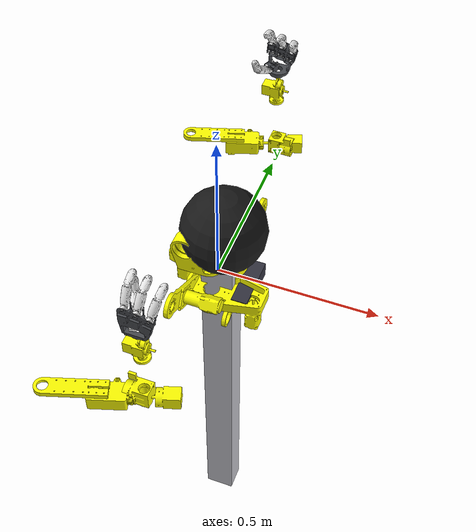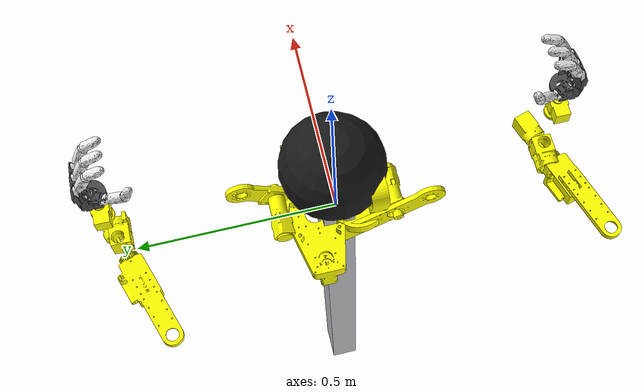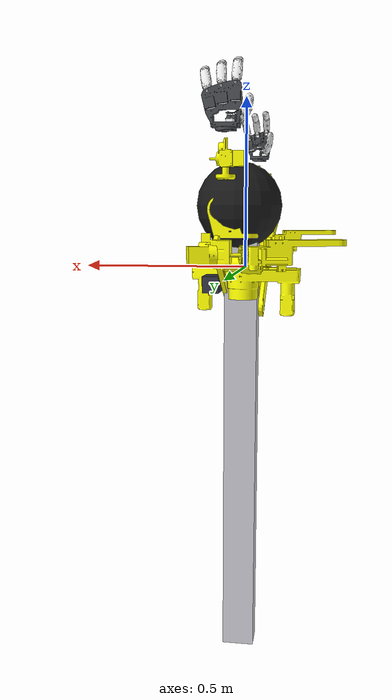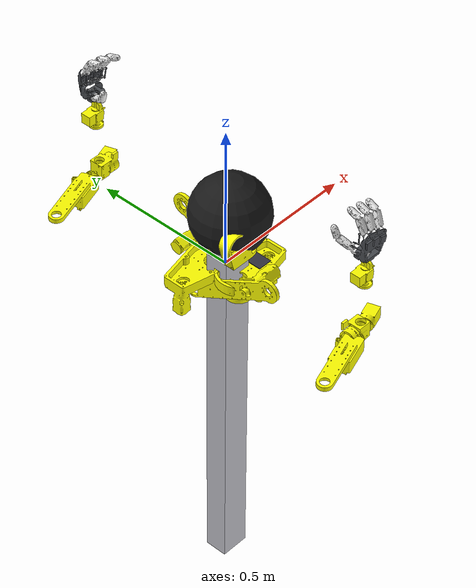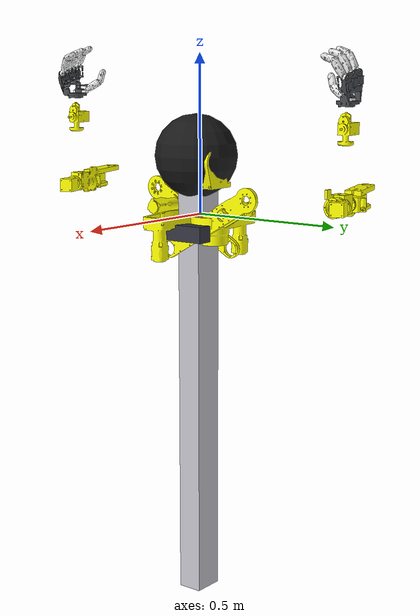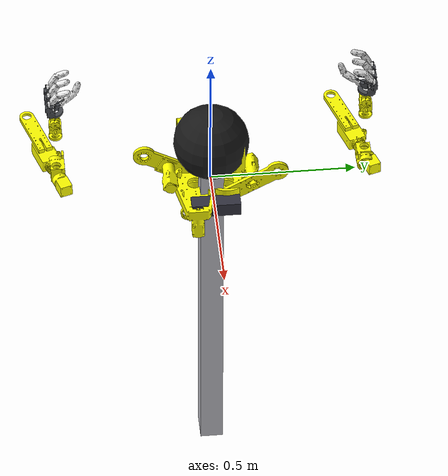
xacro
<?xml version="1.0"?>
<robot xmlns:xacro="http://wiki.ros.org/xacro" name="humanoi_arms">
  <xacro:arg name="left_port" default="/dev/serial/by-path/platform-xhci-hcd.0-usb-0:1:1.0"/>
  <xacro:arg name="right_port" default="/dev/serial/by-path/platform-xhci-hcd.1-usb-0:2:1.0"/>
  <xacro:arg name="left_hw" default="real"/>
  <xacro:arg name="right_hw" default="real"/>

  <xacro:include filename="$(find ar_dual)/urdf/humanoi_upper.xacro"/>
  <xacro:include filename="$(find ar_dual)/urdf/arm_control.xacro"/>

  <xacro:humanoi_upper/>
  <xacro:arm_control prefix="left_" hw="$(arg left_hw)" port="$(arg left_port)"/>
  <xacro:arm_control prefix="right_" hw="$(arg right_hw)" port="$(arg right_port)"/>
</robot>

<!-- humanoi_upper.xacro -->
<robot xmlns:xacro="http://wiki.ros.org/xacro">
  <xacro:include filename="$(find ar_dual)/urdf/ar_arm.xacro"/>
  <xacro:include filename="$(find ar_dual)/urdf/amazinghand.xacro"/>

  <!-- ===== Measured on the real robot 19 Oct 2026 (heights from the floor) ===== -->
  <xacro:property name="up_shoulder_z" value="1.455"/>   <!-- H: floor -> center of arm base (J1 axis) -->
  <xacro:property name="up_plate_top" value="0.205"/>    <!-- C + B: floor -> top of base plate (19.5 + 1 cm) -->
  <xacro:property name="up_head_top" value="1.77"/>      <!-- I: floor -> top of head -->
  <xacro:property name="up_half_gap" value="0.055"/>     <!-- left and right arm bases are 11 cm apart -->
  <!-- ===== Not measured yet (estimated from photos) ===== -->
  <xacro:property name="up_pole_x" value="0.10"/>        <!-- pole cross-section, front-back -->
  <xacro:property name="up_pole_y" value="0.08"/>        <!-- pole cross-section, left-right -->
  <xacro:property name="up_pole_dx" value="0.01"/>       <!-- pole center is in front of the shoulder axis -->
  <xacro:property name="up_head_r" value="0.13"/>        <!-- helmet, approximated as a sphere -->

  <!-- ===== Computed from the values above (relative to the torso frame) ===== -->
  <xacro:property name="up_pole_bottom" value="${up_plate_top - up_shoulder_z}"/>
  <xacro:property name="up_head_cz" value="${up_head_top - up_shoulder_z - up_head_r}"/>
  <xacro:property name="up_pole_len" value="${up_head_cz - up_pole_bottom}"/>
  <xacro:property name="up_pole_cz" value="${(up_head_cz + up_pole_bottom) / 2}"/>
  <xacro:property name="up_left_rpy" value="${-pi/2} 0 0"/>
  <xacro:property name="up_right_rpy" value="${-pi/2} 0 ${pi}"/>

  <!-- left_hand / right_hand: whether that arm has an AmazingHand -->
  <xacro:macro name="humanoi_upper" params="left_hand:=true right_hand:=true">
    <link name="torso">
      <!-- aluminium profile pole, from the top of the base plate up to the head -->
      <visual>
        <origin xyz="${up_pole_dx} 0 ${up_pole_cz}" rpy="0 0 0"/>
        <geometry><box size="${up_pole_x} ${up_pole_y} ${up_pole_len}"/></geometry>
        <material name="pole"><color rgba="0.75 0.75 0.78 1"/></material>
      </visual>
      <collision>
        <origin xyz="${up_pole_dx} 0 ${up_pole_cz}" rpy="0 0 0"/>
        <geometry><box size="${up_pole_x} ${up_pole_y} ${up_pole_len}"/></geometry>
      </collision>
      <!-- head (helmet) -->
      <visual>
        <origin xyz="0.02 0 ${up_head_cz}" rpy="0 0 0"/>
        <geometry><sphere radius="${up_head_r}"/></geometry>
        <material name="head"><color rgba="0.1 0.1 0.1 1"/></material>
      </visual>
      <collision>
        <origin xyz="0.02 0 ${up_head_cz}" rpy="0 0 0"/>
        <geometry><sphere radius="${up_head_r}"/></geometry>
      </collision>
      <!-- Astra Pro camera on the front of the pole below the shoulders (position from hand-eye) -->
      <visual>
        <origin xyz="0.095 0.009 -0.048" rpy="0 0 0"/>
        <geometry><box size="0.05 0.17 0.05"/></geometry>
        <material name="camera"><color rgba="0.2 0.2 0.25 1"/></material>
      </visual>
      <collision>
        <origin xyz="0.095 0.009 -0.048" rpy="0 0 0"/>
        <geometry><box size="0.05 0.17 0.05"/></geometry>
      </collision>
      <inertial>
        <origin xyz="${up_pole_dx} 0 ${up_pole_cz}" rpy="0 0 0"/>
        <mass value="3.0"/>
        <inertia ixx="0.5" ixy="0" ixz="0" iyy="0.5" iyz="0" izz="0.01"/>
      </inertial>
    </link>

    <xacro:ar_arm prefix="left_" parent="torso" off1="0" off2="0" off3="0" off4="0" off5="0" off6="0">
      <origin xyz="0 ${up_half_gap} 0" rpy="${up_left_rpy}"/>
    </xacro:ar_arm>
    <xacro:ar_arm prefix="right_" parent="torso" dir5="-1" flip4="1">
      <origin xyz="0 ${-up_half_gap} 0" rpy="${up_right_rpy}"/>
    </xacro:ar_arm>

    <xacro:if value="${left_hand}">
      <xacro:amazinghand prefix="left_" parent="left_link_6" side="left" mount_offset="0.025" mount_yaw="${pi/2}"/>
    </xacro:if>
    <xacro:if value="${right_hand}">
      <xacro:amazinghand prefix="right_" parent="right_link_6" side="right" mount_offset="0.025"
                         mount_yaw="${-pi/2}"/>
    </xacro:if>
  </xacro:macro>
</robot>

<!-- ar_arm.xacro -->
<robot xmlns:xacro="http://wiki.ros.org/xacro">
  <xacro:property name="ar_zero_trims" value="${xacro.load_yaml('$(find ar_dual)/config/zero_trims.yaml')}"/>
  <xacro:macro name="zero_offset" params="prefix n rpy">
    <link name="${prefix}link_${n}_raw"/>
    <joint name="${prefix}joint_${n}_zero" type="fixed">
      <parent link="${prefix}link_${n}_raw"/>
      <child link="${prefix}link_${n}"/>
      <origin rpy="${rpy}" xyz="0 0 0"/>
    </joint>
  </xacro:macro>
  <xacro:macro name="ar_arm" params="prefix parent *origin dir1:=1 dir2:=1 dir3:=1 dir4:=1 dir5:=1 dir6:=1 flip4:=0
                                   off1:=0 off2:=0 off3:=0 off4:=0 off5:=0 off6:=0">
    <!-- This arm's zero trim stored in the board (config/zero_trims.yaml by prefix name) — joint values shift, limits shift with them -->
    <xacro:property name="zt" value="${[float(v) for v in ar_zero_trims.get(prefix[:-1], [0] * 6)]}"/>

    <joint name="${prefix}base_joint" type="fixed">
      <xacro:insert_block name="origin" />
      <parent link="${parent}"/>
      <child link="${prefix}base_link" />
    </joint>

    <link name="${prefix}base_link">
      <inertial>
        <origin rpy="0 0 0" xyz="-4.6941E-06 0.054174 0.038824"/>
        <mass value="0.7102"/>
        <inertia ixx="0.0039943" ixy="3.697E-07" ixz="-5.7364E-08" iyy="0.0014946" iyz="-0.00036051" izz="0.0042554"/>
      </inertial>
      <visual>
        <origin rpy="0 0 0" xyz="0 0 0"/>
        <geometry>
          <mesh filename="file://$(find ar_description)/meshes/ar4/base_link.STL"/>
        </geometry>
        <material name="">
          <color rgba="1 1 0 1"/>
        </material>
      </visual>
      <collision>
        <origin rpy="0 0 0" xyz="0 0 0"/>
        <geometry>
          <mesh filename="file://$(find ar_description)/meshes/ar4/base_link.STL"/>
        </geometry>
      </collision>
    </link>
    <link name="${prefix}link_1">
      <inertial>
        <origin rpy="0 0 0" xyz="-0.022706 0.04294 -0.12205"/>
        <mass value="0.88065"/>
        <inertia ixx="0.0034" ixy="0.00042296" ixz="-0.00089231" iyy="0.0041778" iyz="0.0010848" izz="0.0027077"/>
      </inertial>
      <visual>
        <origin rpy="0 0 0" xyz="0 0 0"/>
        <geometry>
          <mesh filename="file://$(find ar_description)/meshes/ar4/link_1.STL"/>
        </geometry>
        <material name="">
          <color rgba="1 1 0 1"/>
        </material>
      </visual>
      <collision>
        <origin rpy="0 0 0" xyz="0 0 0"/>
        <geometry>
          <mesh filename="file://$(find ar_description)/meshes/ar4/link_1.STL"/>
        </geometry>
      </collision>
    </link>
    <joint name="${prefix}joint_1" type="revolute">
      <origin rpy="${pi} 0 0" xyz="0 0 0.003445"/>
      <parent link="${prefix}base_link"/>
      <child link="${prefix}link_1_raw"/>
      <axis xyz="${float(dir1) * 0} ${float(dir1) * 0} ${float(dir1) * 1}"/>
      <limit lower="${(-170.0 + zt[0]) / 180.0 * pi}" upper="${(170.0 + zt[0]) / 180.0 * pi}" effort="100" velocity="0.5"/>
    </joint>
    <xacro:zero_offset prefix="${prefix}" n="1" rpy="0 0 ${float(off1) * pi / 180.0 * float(dir1)}"/>
    <link name="${prefix}link_2">
      <inertial>
        <origin rpy="0 0 0" xyz="0.064818 -0.11189 -0.038671"/>
        <mass value="0.57738"/>
        <inertia ixx="0.0047312" ixy="0.0022624" ixz="0.00032144" iyy="0.0020836" iyz="-0.00056569" izz="0.0056129"/>
      </inertial>
      <visual>
        <origin rpy="0 0 0" xyz="0 0 0"/>
        <geometry>
          <mesh filename="file://$(find ar_description)/meshes/ar4/link_2.STL"/>
        </geometry>
        <material name="">
          <color rgba="1 1 0 1"/>
        </material>
      </visual>
      <collision>
        <origin rpy="0 0 0" xyz="0 0 0"/>
        <geometry>
          <mesh filename="file://$(find ar_description)/meshes/ar4/link_2.STL"/>
        </geometry>
      </collision>
    </link>
    <joint name="${prefix}joint_2" type="revolute">
      <origin rpy="1.5708 0.5236 -1.5708" xyz="0 0.064146 -0.16608"/>
      <parent link="${prefix}link_1"/>
      <child link="${prefix}link_2_raw"/>
      <axis xyz="${float(dir2) * 0} ${float(dir2) * 0} ${float(dir2) * -1}"/>
      <limit lower="${(-42.0 + zt[1]) / 180.0 * pi}" upper="${(90.0 + zt[1]) / 180.0 * pi}" effort="100" velocity="0.5"/>
    </joint>
    <xacro:zero_offset prefix="${prefix}" n="2" rpy="0 0 ${-float(off2) * pi / 180.0 * float(dir2)}"/>
    <link name="${prefix}link_3">
      <inertial>
        <origin rpy="0 0 0" xyz="-0.00029765 -0.023661 -0.0019125"/>
        <mass value="0.1787"/>
        <inertia ixx="0.0001685" ixy="-2.7713E-05" ixz="5.6885E-06" iyy="0.00012865" iyz="2.9256E-05" izz="0.00020744"/>
      </inertial>
      <visual>
        <origin rpy="0 0 0" xyz="0 0 0"/>
        <geometry>
          <mesh filename="file://$(find ar_description)/meshes/ar4/link_3.STL"/>
        </geometry>
        <material name="">
          <color rgba="1 1 0 1"/>
        </material>
      </visual>
      <collision>
        <origin rpy="0 0 0" xyz="0 0 0"/>
        <geometry>
          <mesh filename="file://$(find ar_description)/meshes/ar4/link_3.STL"/>
        </geometry>
      </collision>
    </link>
    <joint name="${prefix}joint_3" type="revolute">
      <origin rpy="0 0 -2.61799" xyz="0.1525 -0.26414 0"/>
      <parent link="${prefix}link_2"/>
      <child link="${prefix}link_3_raw"/>
      <axis xyz="${float(dir3) * 0} ${float(dir3) * 0} ${float(dir3) * -1}"/>
      <limit lower="${(-89.0 + zt[2]) / 180.0 * pi}" upper="${(52.0 + zt[2]) / 180.0 * pi}" effort="100" velocity="0.5"/>
    </joint>
    <xacro:zero_offset prefix="${prefix}" n="3" rpy="0 0 ${-float(off3) * pi / 180.0 * float(dir3)}"/>
    <link name="${prefix}link_4">
      <inertial>
        <origin rpy="0 0 0" xyz="-0.0016798 -0.00057319 -0.074404"/>
        <mass value="0.34936"/>
        <inertia ixx="0.0030532" ixy="-1.8615E-05" ixz="-7.0047E-05" iyy="0.0031033" iyz="-2.3301E-05" izz="0.00022264"/>
      </inertial>
      <visual>
        <origin rpy="0 0 0" xyz="0 0 0"/>
        <geometry>
          <mesh filename="file://$(find ar_description)/meshes/ar4/link_4.STL"/>
        </geometry>
        <material name="">
          <color rgba="1 1 0 1"/>
        </material>
      </visual>
      <collision>
        <origin rpy="0 0 0" xyz="0 0 0"/>
        <geometry>
          <mesh filename="file://$(find ar_description)/meshes/ar4/link_4.STL"/>
        </geometry>
      </collision>
    </link>
    <joint name="${prefix}joint_4" type="revolute">
      <!-- flip4: original × rotation about the joint 4 axis (z) by 180° — precomputed (checked in reverse, error < 1e-15) -->
      <origin rpy="${'-1.5708 1.2554 1.570793' if int(flip4) else '1.5708 -1.2554 -1.5708'}" xyz="0 0 0.00675"/>
      <parent link="${prefix}link_3"/>
      <child link="${prefix}link_4_raw"/>
      <axis xyz="${float(dir4) * 0} ${float(dir4) * 0} ${float(dir4) * -1}"/>
      <limit lower="${(-165.0 + zt[3]) / 180.0 * pi}" upper="${(165.0 + zt[3]) / 180.0 * pi}" effort="100" velocity="0.5"/>
    </joint>
    <xacro:zero_offset prefix="${prefix}" n="4" rpy="0 0 ${-float(off4) * pi / 180.0 * float(dir4)}"/>
    <link name="${prefix}link_5">
      <inertial>
        <origin rpy="0 0 0" xyz="0.0015066 -1.3102E-05 -0.012585"/>
        <mass value="0.11562"/>
        <inertia ixx="5.5035E-05" ixy="-1.019E-08" ixz="-2.6243E-06" iyy="8.2921E-05" iyz="1.4437E-08" izz="5.2518E-05"/>
      </inertial>
      <visual>
        <origin rpy="0 0 0" xyz="0 0 0"/>
        <geometry>
          <mesh filename="file://$(find ar_description)/meshes/ar4/link_5.STL"/>
        </geometry>
        <material name="">
          <color rgba="1 1 0 1"/>
        </material>
      </visual>
      <collision>
        <origin rpy="0 0 0" xyz="0 0 0"/>
        <geometry>
          <mesh filename="file://$(find ar_description)/meshes/ar4/link_5.STL"/>
        </geometry>
      </collision>
    </link>
    <joint name="${prefix}joint_5" type="revolute">
      <origin rpy="${pi} 0 -2.8262" xyz="0 0 -0.22225"/>
      <parent link="${prefix}link_4"/>
      <child link="${prefix}link_5_raw"/>
      <axis xyz="${float(dir5) * 1} ${float(dir5) * 0} ${float(dir5) * 0}"/>
      <limit lower="${(-105.0 + zt[4]) / 180.0 * pi}" upper="${(105.0 + zt[4]) / 180.0 * pi}" effort="100" velocity="0.5"/>
    </joint>
    <xacro:zero_offset prefix="${prefix}" n="5" rpy="${float(off5) * pi / 180.0 * float(dir5)} 0 0"/>
    <link name="${prefix}link_6">
      <inertial>
        <origin rpy="0 0 0" xyz="2.9287E-10 -1.6472E-09 0.0091432"/>
        <mass value="0.013863"/>
        <inertia ixx="1.3596E-06" ixy="3.0585E-13" ixz="5.7102E-14" iyy="1.7157E-06" iyz="6.3369E-09" izz="2.4332E-06"/>
      </inertial>
      <visual>
        <origin rpy="0 0 0" xyz="0 0 0"/>
        <geometry>
          <mesh filename="file://$(find ar_description)/meshes/ar4/link_6.STL"/>
        </geometry>
        <material name="">
          <color rgba="1 1 0 1"/>
        </material>
      </visual>
      <collision>
        <origin rpy="0 0 0" xyz="0 0 0"/>
        <geometry>
          <mesh filename="file://$(find ar_description)/meshes/ar4/link_6.STL"/>
        </geometry>
      </collision>
    </link>
    <joint name="${prefix}joint_6" type="revolute">
      <origin rpy="0 0 3.1416" xyz="-0.000294 0 0.02117"/>
      <parent link="${prefix}link_5"/>
      <child link="${prefix}link_6_raw"/>
      <axis xyz="${float(dir6) * 0} ${float(dir6) * 0} ${float(dir6) * 1}"/>
      <limit lower="${(-155.0 + zt[5]) / 180.0 * pi}" upper="${(155.0 + zt[5]) / 180.0 * pi}" effort="100" velocity="0.5"/>
    </joint>
    <xacro:zero_offset prefix="${prefix}" n="6" rpy="0 0 ${float(off6) * pi / 180.0 * float(dir6)}"/>
  </xacro:macro>
</robot>

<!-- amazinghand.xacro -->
<robot xmlns:xacro="http://wiki.ros.org/xacro">
  <xacro:macro name="amazinghand" params="prefix parent side:=right mount_offset:=0.0 mount_yaw:=0.0">
    <xacro:property name="ys" value="${1 if side == 'right' else -1}"/>
    <joint name="${prefix}hand_joint" type="fixed">
      <parent link="${parent}"/>
      <child link="${prefix}hand"/>
      <origin xyz="0 0 ${0.016 + mount_offset}" rpy="0 0 ${mount_yaw}"/>
    </joint>

    <link name="${prefix}hand">
      <!-- servos + palm plate (dark) -->
      <visual>
        <geometry>
          <mesh filename="file://$(find ar_dual)/meshes/amazinghand/ah_${side}_dark.stl"/>
        </geometry>
        <material name="hand_dark"><color rgba="0.28 0.29 0.31 1"/></material>
      </visual>
      <!-- 3D-printed frame + finger shells (light) -->
      <visual>
        <geometry>
          <mesh filename="file://$(find ar_dual)/meshes/amazinghand/ah_${side}_light.stl"/>
        </geometry>
        <material name="hand_light"><color rgba="0.92 0.92 0.92 1"/></material>
      </visual>
      <!-- wrist / mount -->
      <collision>
        <origin xyz="0.012 ${ys * 0.002} 0.0156" rpy="0 0 0"/>
        <geometry><box size="0.079 0.076 0.029"/></geometry>
      </collision>
      <!-- palm + servos + thumb -->
      <collision>
        <origin xyz="0.030 0 0.065" rpy="0 0 0"/>
        <geometry><box size="0.125 0.111 0.070"/></geometry>
      </collision>
      <!-- index, middle, ring fingers -->
      <collision>
        <origin xyz="0.013 ${ys * -0.014} 0.135" rpy="0 0 0"/>
        <geometry><box size="0.081 0.103 0.070"/></geometry>
      </collision>
      <!-- ~400 g whole hand (8 servos + 3D-printed frame) -->
      <inertial>
        <origin xyz="0.02 0 0.07" rpy="0 0 0"/>
        <mass value="0.4"/>
        <inertia ixx="0.0011" ixy="0" ixz="0" iyy="0.0011" iyz="0" izz="0.0005"/>
      </inertial>
    </link>
  </xacro:macro>
</robot>
